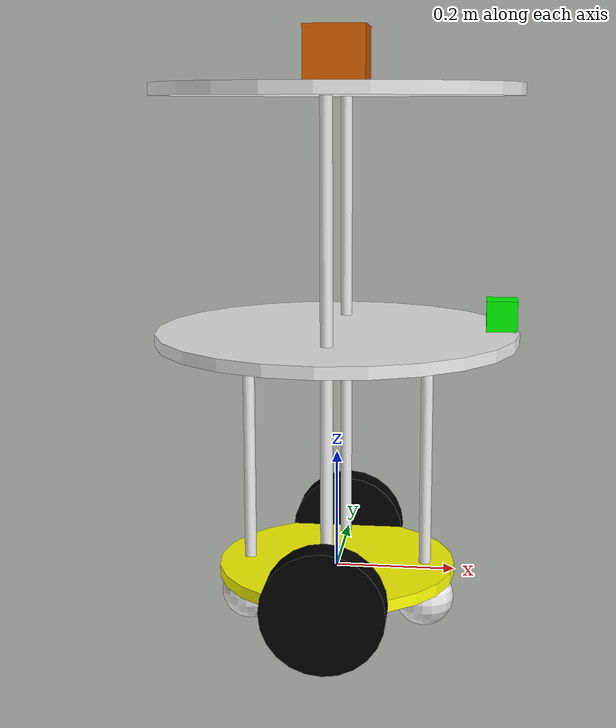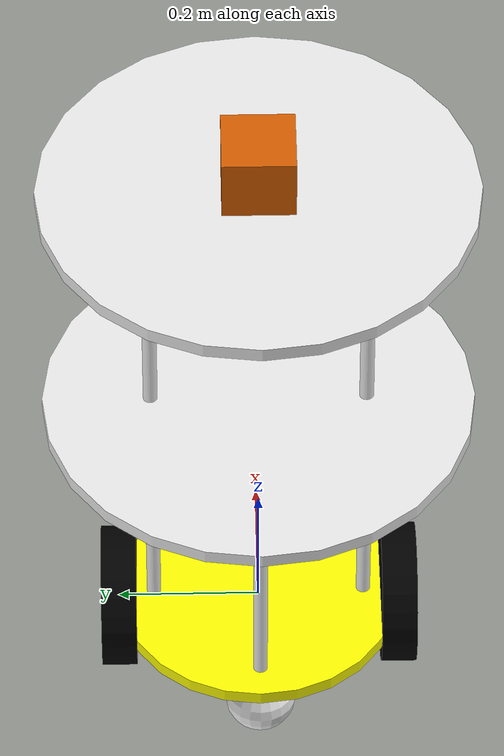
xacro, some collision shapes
<?xml version='1.0'?>

<robot name="udacity_bot" xmlns:xacro="http://www.ros.org/wiki/xacro">
 <xacro:include filename="$(find slam_project)/urdf/slam_bot.gazebo" />
  <link name="robot_footprint"></link>

  <joint name="robot_footprint_joint" type="fixed">
    <origin xyz="0 0 0" rpy="0 0 0" />
    <parent link="robot_footprint"/>
    <child link="chassis" />
  </joint>

  <link name='chassis'>
    <pose>0 0 0 0 0 0</pose>

    <inertial>
      <mass value="1.0"/>
      <origin xyz="0 0 0" rpy=" 0 0 0"/>
      <inertia
          ixx="0.1" ixy="0" ixz="0"
          iyy="0.1" iyz="0"
          izz="0.1"
      />
    </inertial>
	<collision name='chassis_collision'>
      <origin xyz="0 0 0" rpy=" 0 0 0"/>
      <geometry>
        <cylinder radius=".2" length=".02"/>
      </geometry>
    </collision>

    <visual name='chassis_visual'>
      <origin xyz="0 0 0" rpy=" 0 0 0"/>
      <geometry>
        <cylinder radius=".2" length=".02"/>
      </geometry>
      <material name="chassis base">
        <color rgba="1 1 0 1"/>
      </material>
    </visual>

    <collision name='left_leg_collision'>
      <origin xyz="0 -0.15 0.2" rpy=" 0 0 0"/>
      <geometry>
        <cylinder radius=".01" length=".4"/>
      </geometry>
    </collision>

    <visual name='left_leg_visual'>
      <origin xyz="0 -0.15 0.2" rpy=" 0 0 0"/>
      <geometry>
        <cylinder radius=".01" length=".4"/>
      </geometry>
    </visual>
     <collision name='right_leg_collision'>
      <origin xyz="0 0.15 0.2" rpy=" 0 0 0"/>
      <geometry>
        <cylinder radius=".01" length=".4"/>
      </geometry>
    </collision>

    <visual name='right_leg_visual'>
      <origin xyz="0 0.15 0.2" rpy=" 0 0 0"/>
      <geometry>
        <cylinder radius=".01" length=".4"/>
      </geometry>
    </visual>

    <collision name='front_leg_collision'>
      <origin xyz="0.15 0 0.2" rpy=" 0 0 0"/>
      <geometry>
        <cylinder radius=".01" length=".4"/>
      </geometry>
    </collision>

    <visual name='front_leg_visual'>
      <origin xyz="0.15 0 0.2" rpy=" 0 0 0"/>
      <geometry>
        <cylinder radius=".01" length=".4"/>
      </geometry>
    </visual>
     <collision name='back_leg_collision'>
      <origin xyz="-0.15 0 0.2" rpy=" 0 0 0"/>
      <geometry>
        <cylinder radius=".01" length=".4"/>
      </geometry>
    </collision>

    <visual name='back_leg_visual'>
      <origin xyz="-0.15 0 0.2" rpy=" 0 0 0"/>
      <geometry>
        <cylinder radius=".01" length=".4"/>
      </geometry>
    </visual>

     <collision name='disk2_collision'>
      <origin xyz="0 0 0.4" rpy=" 0 0 0"/>
      <geometry>
        <cylinder radius=".3" length=".02"/>
      </geometry>
    </collision>

    <visual name='disk2_visual'>
      <origin xyz="0 0 0.4" rpy=" 0 0 0"/>
      <geometry>
        <cylinder radius=".3" length=".02"/>
      </geometry>
    </visual>

    <collision name='left_leg2_collision'>
      <origin xyz="0 -0.15 0.6" rpy=" 0 0 0"/>
      <geometry>
        <cylinder radius=".01" length=".4"/>
      </geometry>
    </collision>

    <visual name='left_leg2_visual'>
      <origin xyz="0 -0.15 0.6" rpy=" 0 0 0"/>
      <geometry>
        <cylinder radius=".01" length=".4"/>
      </geometry>
    </visual>
     <collision name='right_leg2_collision'>
      <origin xyz="0 0.15 0.6" rpy=" 0 0 0"/>
      <geometry>
        <cylinder radius=".01" length=".4"/>
      </geometry>
    </collision>

    <visual name='right_leg2_visual'>
      <origin xyz="0 0.15 0.6" rpy=" 0 0 0"/>
      <geometry>
        <cylinder radius=".01" length=".4"/>
      </geometry>
    </visual>
   <collision name='disk3_collision'>
      <origin xyz="0 0 0.8" rpy=" 0 0 0"/>
      <geometry>
        <cylinder radius=".3" length=".02"/>
      </geometry>
    </collision>

    <visual name='disk3_visual'>
      <origin xyz="0 0 0.8" rpy=" 0 0 0"/>
      <geometry>
        <cylinder radius=".3" length=".02"/>
      </geometry>
    </visual>
     <collision name='back_caster_collision'>
      <origin xyz="-0.15 0 -0.05" rpy=" 0 0 0"/>
      <geometry>
        <sphere radius="0.05"/>
      </geometry>
    </collision>
    <visual name='back_caster_visual'>
      <origin xyz="-0.15 0 -0.05" rpy=" 0 0 0"/>
      <geometry>
        <sphere radius="0.05"/>
      </geometry>
    </visual>

    <collision name='front_caster_collision'>
      <origin xyz="0.15 0 -0.05" rpy=" 0 0 0"/>
      <geometry>
        <sphere radius="0.0499"/>
      </geometry>
    </collision>

    <visual name='front_caster_visual'>
      <origin xyz="0.15 0 -0.05" rpy=" 0 0 0"/>
      <geometry>
        <sphere radius="0.05"/>
      </geometry>
    </visual>
    </link>
<link name='left_wheel'>
    <pose>0 0 0 0 1.5707 1.5707</pose>
    <inertial>
      <mass value="5.0"/>
      <origin xyz="0.0 0 0" rpy=" 0 1.5707 1.5707"/>
      <inertia
          ixx="0.1" ixy="0" ixz="0"
          iyy="0.1" iyz="0"
          izz="0.1"
      />
    </inertial>

    <collision name='collision'>
      <origin xyz="0 0 0" rpy=" 0 1.5707 1.5707"/>
      <geometry>
        <cylinder length="0.05" radius="0.1"/>
      </geometry>
    </collision>

    <visual name='left_wheel_visual'>
      <origin xyz="0 0 0" rpy=" 0 1.5707 1.5707"/>
      <geometry>
        <cylinder length="0.05" radius="0.1"/>
      </geometry>
      <material name="">
        <color rgba="0 0 0 1"/>
      </material>
    </visual>
 </link>

<link name='right_wheel'>
    <pose>0 0 0 0 1.5707 1.5707</pose>

    <inertial>
      <mass value="5.0"/>
      <origin xyz="0.0 0 0" rpy=" 0 1.5707 1.5707"/>
      <inertia
          ixx="0.1" ixy="0" ixz="0"
          iyy="0.1" iyz="0"
          izz="0.1"
      />
    </inertial>

    <collision name='collision'>
      <origin xyz="0 0 0" rpy=" 0 1.5707 1.5707"/>
      <geometry>
        <cylinder length="0.05" radius="0.1"/>
      </geometry>
    </collision>

    <visual name='right_wheel_visual'>
      <origin xyz="0 0 0" rpy=" 0 1.5707 1.5707"/>
      <geometry>
        <cylinder length="0.05" radius="0.1"/>
      </geometry>
       <material name="">
        <color rgba="0 0 0 1"/>
      </material>
    </visual>
  </link>
 <link name='camera'>
    <pose>0 0 0 0 0 0</pose>
    <inertial>
      <mass value="0.1"/>
      <origin xyz="0 0 0" rpy=" 0 0 0"/>
      <inertia
          ixx="1e-6" ixy="0" ixz="0"
          iyy="1e-6" iyz="0"
          izz="1e-6"
      />
    </inertial>
    <collision name='collision'>
      <origin xyz="0 0 0" rpy=" 0 0 0"/>
      <geometry>
        <box size=".05 .05 .05"/>
      </geometry>
    </collision>
    <visual name='camera_visual'>
      <origin xyz="0 0 0" rpy=" 0 0 0"/>
      <geometry>
        <box size=".05 .05 .05"/>
      </geometry>
      <material name="">
        <color rgba="0 1 0 1"/>
      </material>
    </visual>
 </link>
 <link name='hokuyo'>
    <pose>0 0 0 0 0 0</pose>
    <inertial>
      <mass value="0.1"/>
      <origin xyz="0 0 0" rpy=" 0 0 0"/>
      <inertia
          ixx="1e-6" ixy="0" ixz="0"
          iyy="1e-6" iyz="0"
          izz="1e-6"
      />
    </inertial>
    <collision name='collision'>
      <origin xyz="0 0 0" rpy=" 0 0 0"/>
      <geometry>
        <box size=".1 .1 .1"/>
      </geometry>
    </collision>
    <visual name='hokuyo_visual'>
      <origin xyz="0 0 0" rpy=" 0 0 0"/>
      <geometry>
        <mesh filename="package://slam_project/meshes/hokuyo.dae"/>
      </geometry>
    </visual>
 </link>
 <joint type="continuous" name="left_wheel_hinge">
    <origin xyz="0 0.2 0" rpy="0 0 0"/>
    <child link="left_wheel"/>
    <parent link="chassis"/>
    <axis xyz="0 1 0" rpy="0 0 0"/>
    <limit effort="10000" velocity="1000"/>
    <dynamics damping="1.0" friction="1.0"/>
  </joint>

  <joint type="continuous" name="right_wheel_hinge">
    <origin xyz="0 -0.2 0" rpy="0 0 0"/>
    <child link="right_wheel"/>
    <parent link="chassis"/>
    <axis xyz="0 1 0" rpy="0 0 0"/>
    <limit effort="10000" velocity="1000"/>
    <dynamics damping="1.0" friction="1.0"/>
  </joint>
  <joint type="fixed" name="camera_joint">
    <origin xyz="0.27 0 0.44" rpy="0 0 0"/>
    <child link="camera"/>
    <parent link="chassis"/>
    <axis xyz="0 1 0" rpy="0 0 0"/>
    <limit effort="10000" velocity="1000"/>
    <dynamics damping="1.0" friction="1.0"/>
  </joint>
  <link name="camera_rgbd_frame"></link>
  <joint name="camera_rgbd_joint" type="fixed">
    <origin xyz="0.06 0 0" rpy="-${pi/2} 0 -${pi/2}"/>
    <parent link="camera"/>
    <child link="camera_rgbd_frame"/>
  </joint>
  <joint type="fixed" name="hokuyo_joint">
    <origin xyz="0 0 0.85" rpy="0 0 0"/>
    <child link="hokuyo"/>
    <parent link="chassis"/>
    <axis xyz="0 0 1" rpy="0 0 0"/>
    <limit effort="10000" velocity="1000"/>
    <dynamics damping="1.0" friction="1.0"/>
  </joint>
</robot>
